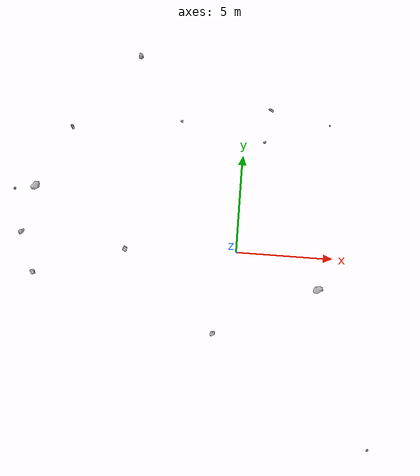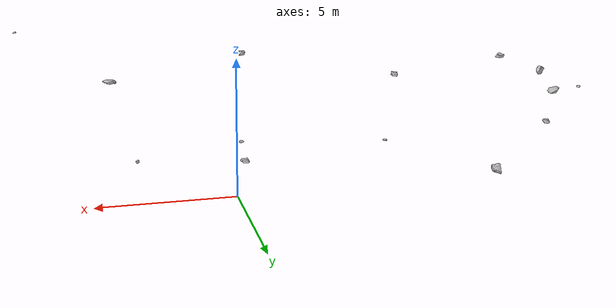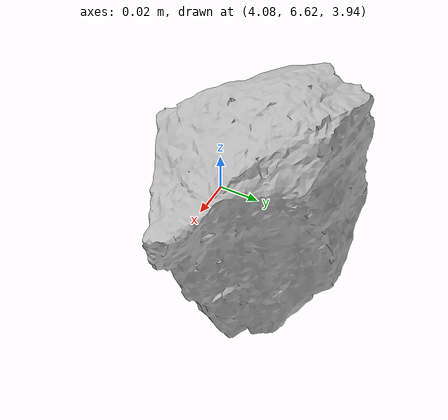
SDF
<sdf version="1.7">
 <world name="marsyard">
  <gravity>0 0 -9.81</gravity>
  <physics name="dart_physics" type="ignored">
   <max_step_size>0.003</max_step_size>
   <real_time_update_rate>333</real_time_update_rate>
   <real_time_factor>1.0</real_time_factor>
  </physics>
  <plugin filename="ignition-gazebo-physics-system" name="ignition::gazebo::systems::Physics"/>
  <plugin filename="ignition-gazebo-user-commands-system" name="ignition::gazebo::systems::UserCommands"/>
  <plugin filename="ignition-gazebo-scene-broadcaster-system" name="ignition::gazebo::systems::SceneBroadcaster"/>
  <plugin filename="ignition-gazebo-contact-system" name="ignition::gazebo::systems::Contact"/>
  <scene>
   <ambient>0.95 0.95 0.95 1</ambient>
   <background>0.70 0.70 0.70 1</background>
   <shadows>false</shadows>
  </scene>
  <light type="directional" name="sun">
   <cast_shadows>false</cast_shadows>
   <pose>0 0 30 0 0 0</pose>
   <diffuse>1 1 1 1</diffuse>
   <specular>0.15 0.15 0.15 1</specular>
   <direction>-0.35 0.1 -0.93</direction>
  </light>
  <model name="Rock_2">
   <static>true</static>
   <pose>7.1767 -9.4028 4.0000 0.0000 0.0000 1.0646</pose>
   <link name="link">
    <visual name="visual">
     <geometry><mesh><uri>package://rock_generator/rocks_ws/rock_5/meshes/rock_5.stl</uri></mesh></geometry>
    </visual>
    <collision name="collision">
     <geometry><mesh><uri>package://rock_generator/rocks_ws/rock_5/meshes/rock_5.stl</uri></mesh></geometry>
    </collision>
   </link>
  </model>
  <model name="Rock_4">
   <static>true</static>
   <pose>-5.6425 9.4482 4.0000 0.0000 0.0000 -1.5983</pose>
   <link name="link">
    <visual name="visual">
     <geometry><mesh><uri>package://rock_generator/rocks_ws/rock_3/meshes/rock_3.stl</uri></mesh></geometry>
    </visual>
    <collision name="collision">
     <geometry><mesh><uri>package://rock_generator/rocks_ws/rock_3/meshes/rock_3.stl</uri></mesh></geometry>
    </collision>
   </link>
  </model>
  <model name="Rock_5">
   <static>true</static>
   <pose>-10.9184 0.3532 4.0000 0.0000 0.0000 -2.7473</pose>
   <link name="link">
    <visual name="visual">
     <geometry><mesh><uri>package://rock_generator/rocks_ws/rock_3/meshes/rock_3.stl</uri></mesh></geometry>
    </visual>
    <collision name="collision">
     <geometry><mesh><uri>package://rock_generator/rocks_ws/rock_3/meshes/rock_3.stl</uri></mesh></geometry>
    </collision>
   </link>
  </model>
  <model name="Rock_6">
   <static>true</static>
   <pose>-10.3418 2.6032 4.0000 0.0000 0.0000 0.6534</pose>
   <link name="link">
    <visual name="visual">
     <geometry><mesh><uri>package://rock_generator/rocks_ws/rock_8/meshes/rock_8.stl</uri></mesh></geometry>
    </visual>
    <collision name="collision">
     <geometry><mesh><uri>package://rock_generator/rocks_ws/rock_8/meshes/rock_8.stl</uri></mesh></geometry>
    </collision>
   </link>
  </model>
  <model name="Rock_7">
   <static>true</static>
   <pose>4.1256 6.6672 4.0000 0.0000 0.0000 2.2773</pose>
   <link name="link">
    <visual name="visual">
     <geometry><mesh><uri>package://rock_generator/rocks_ws/rock_9/meshes/rock_9.stl</uri></mesh></geometry>
    </visual>
    <collision name="collision">
     <geometry><mesh><uri>package://rock_generator/rocks_ws/rock_9/meshes/rock_9.stl</uri></mesh></geometry>
    </collision>
   </link>
  </model>
  <model name="Rock_8">
   <static>true</static>
   <pose>-11.3576 2.3924 4.0000 0.0000 0.0000 2.3105</pose>
   <link name="link">
    <visual name="visual">
     <geometry><mesh><uri>package://rock_generator/rocks_ws/rock_5/meshes/rock_5.stl</uri></mesh></geometry>
    </visual>
    <collision name="collision">
     <geometry><mesh><uri>package://rock_generator/rocks_ws/rock_5/meshes/rock_5.stl</uri></mesh></geometry>
    </collision>
   </link>
  </model>
  <model name="Rock_9">
   <static>true</static>
   <pose>1.1507 7.2265 4.0000 0.0000 0.0000 -0.6057</pose>
   <link name="link">
    <visual name="visual">
     <geometry><mesh><uri>package://rock_generator/rocks_ws/rock_6/meshes/rock_6.stl</uri></mesh></geometry>
    </visual>
    <collision name="collision">
     <geometry><mesh><uri>package://rock_generator/rocks_ws/rock_6/meshes/rock_6.stl</uri></mesh></geometry>
    </collision>
   </link>
  </model>
  <model name="Rock_10">
   <static>true</static>
   <pose>-10.2019 -1.7074 4.0000 0.0000 0.0000 1.0218</pose>
   <link name="link">
    <visual name="visual">
     <geometry><mesh><uri>package://rock_generator/rocks_ws/rock_1/meshes/rock_1.stl</uri></mesh></geometry>
    </visual>
    <collision name="collision">
     <geometry><mesh><uri>package://rock_generator/rocks_ws/rock_1/meshes/rock_1.stl</uri></mesh></geometry>
    </collision>
   </link>
  </model>
  <model name="Rock_11">
   <static>true</static>
   <pose>4.1336 -1.5582 4.0000 0.0000 0.0000 -2.9122</pose>
   <link name="link">
    <visual name="visual">
     <geometry><mesh><uri>package://rock_generator/rocks_ws/rock_8/meshes/rock_8.stl</uri></mesh></geometry>
    </visual>
    <collision name="collision">
     <geometry><mesh><uri>package://rock_generator/rocks_ws/rock_8/meshes/rock_8.stl</uri></mesh></geometry>
    </collision>
   </link>
  </model>
  <model name="Rock_12">
   <static>true</static>
   <pose>-0.9803 -4.1577 4.0000 0.0000 0.0000 2.4651</pose>
   <link name="link">
    <visual name="visual">
     <geometry><mesh><uri>package://rock_generator/rocks_ws/rock_1/meshes/rock_1.stl</uri></mesh></geometry>
    </visual>
    <collision name="collision">
     <geometry><mesh><uri>package://rock_generator/rocks_ws/rock_1/meshes/rock_1.stl</uri></mesh></geometry>
    </collision>
   </link>
  </model>
  <model name="Rock_13">
   <static>true</static>
   <pose>-3.2682 6.3457 4.0000 0.0000 0.0000 -0.3619</pose>
   <link name="link">
    <visual name="visual">
     <geometry><mesh><uri>package://rock_generator/rocks_ws/rock_5/meshes/rock_5.stl</uri></mesh></geometry>
    </visual>
    <collision name="collision">
     <geometry><mesh><uri>package://rock_generator/rocks_ws/rock_5/meshes/rock_5.stl</uri></mesh></geometry>
    </collision>
   </link>
  </model>
  <model name="Rock_14">
   <static>true</static>
   <pose>-5.6334 -0.2348 4.0000 0.0000 0.0000 -2.7878</pose>
   <link name="link">
    <visual name="visual">
     <geometry><mesh><uri>package://rock_generator/rocks_ws/rock_1/meshes/rock_1.stl</uri></mesh></geometry>
    </visual>
    <collision name="collision">
     <geometry><mesh><uri>package://rock_generator/rocks_ws/rock_1/meshes/rock_1.stl</uri></mesh></geometry>
    </collision>
   </link>
  </model>
  <model name="Rock_15">
   <static>true</static>
   <pose>-8.7022 5.6799 4.0000 0.0000 0.0000 -1.2378</pose>
   <link name="link">
    <visual name="visual">
     <geometry><mesh><uri>package://rock_generator/rocks_ws/rock_6/meshes/rock_6.stl</uri></mesh></geometry>
    </visual>
    <collision name="collision">
     <geometry><mesh><uri>package://rock_generator/rocks_ws/rock_6/meshes/rock_6.stl</uri></mesh></geometry>
    </collision>
   </link>
  </model>
  <model name="Rock_16">
   <static>true</static>
   <pose>0.9366 5.5927 4.0000 0.0000 0.0000 -2.7849</pose>
   <link name="link">
    <visual name="visual">
     <geometry><mesh><uri>package://rock_generator/rocks_ws/rock_5/meshes/rock_5.stl</uri></mesh></geometry>
    </visual>
    <collision name="collision">
     <geometry><mesh><uri>package://rock_generator/rocks_ws/rock_5/meshes/rock_5.stl</uri></mesh></geometry>
    </collision>
   </link>
  </model>
 </world>
</sdf>
